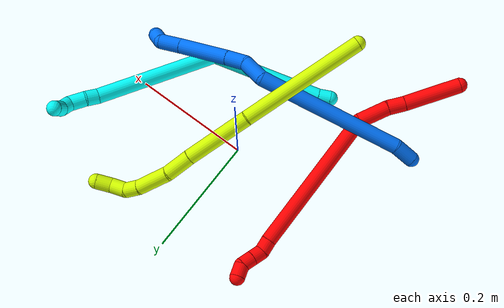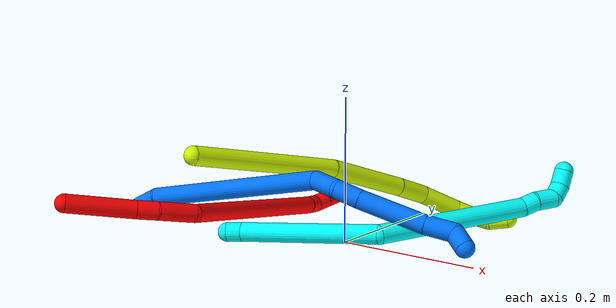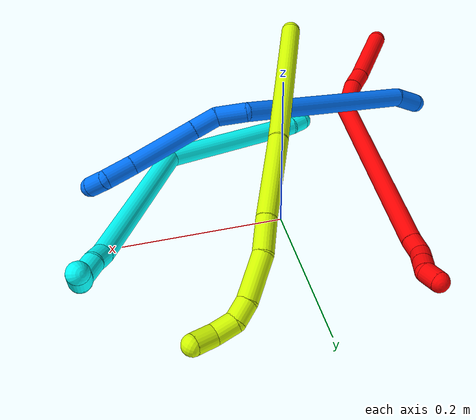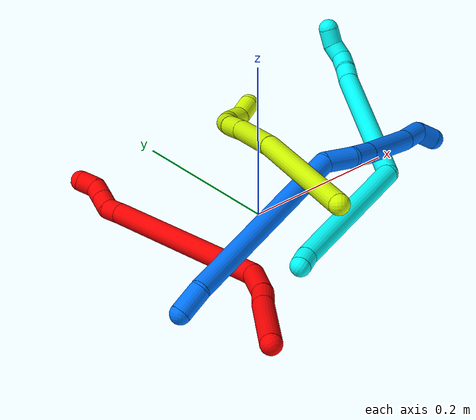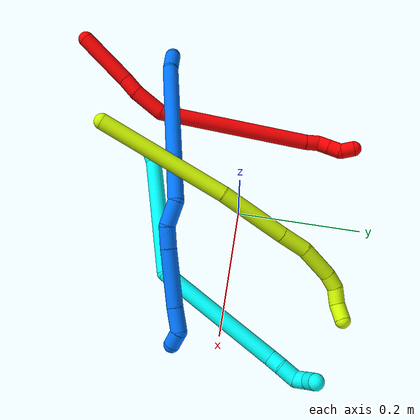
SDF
<sdf version="1.7">
 <world name="default">
  <model name="2">
   <static>0</static>
   <link name="2">
    <collision name="collision-cylinder-e_1_1_4">
     <pose>-0.012761 0.027222 -0.035474 -2.48706 -0.27799 0.781788</pose>
     <geometry><cylinder><radius>0.0125</radius><length>0.093001</length></cylinder></geometry>
     <surface>
      <friction><ode><mu>1.16</mu><mu2>1.16</mu2><slip1>0</slip1><slip2>0</slip2></ode></friction>
      <contact><ode><kp>1e+06</kp><kd>1</kd><max_vel>0</max_vel><min_depth>0.001</min_depth></ode></contact>
     </surface>
    </collision>
    <visual name="visual-cylinder-e_1_1_4">
     <pose>-0.012761 0.027222 -0.035474 -2.48706 -0.27799 0.781788</pose>
     <geometry><cylinder><radius>0.0125</radius><length>0.093001</length></cylinder></geometry>
     <material><ambient>1 0 0 1</ambient></material>
    </visual>
    <collision name="collision-cylinder-e_2_4_5">
     <pose>-0.030514 0.062322 -0.081615 -2.50552 -0.36005 1.01001</pose>
     <geometry><cylinder><radius>0.0125</radius><length>0.028337</length></cylinder></geometry>
     <surface>
      <friction><ode><mu>1.16</mu><mu2>1.16</mu2><slip1>0</slip1><slip2>0</slip2></ode></friction>
      <contact><ode><kp>1e+06</kp><kd>1</kd><max_vel>0</max_vel><min_depth>0.001</min_depth></ode></contact>
     </surface>
    </collision>
    <visual name="visual-cylinder-e_2_4_5">
     <pose>-0.030514 0.062322 -0.081615 -2.50552 -0.36005 1.01001</pose>
     <geometry><cylinder><radius>0.0125</radius><length>0.028337</length></cylinder></geometry>
     <material><ambient>1 0 0 1</ambient></material>
    </visual>
    <collision name="collision-cylinder-e_3_5_6">
     <pose>-0.039711 0.084904 -0.112678 -2.51692 -0.165704 0.503428</pose>
     <geometry><cylinder><radius>0.0125</radius><length>0.050988</length></cylinder></geometry>
     <surface>
      <friction><ode><mu>1.16</mu><mu2>1.16</mu2><slip1>0</slip1><slip2>0</slip2></ode></friction>
      <contact><ode><kp>1e+06</kp><kd>1</kd><max_vel>0</max_vel><min_depth>0.001</min_depth></ode></contact>
     </surface>
    </collision>
    <visual name="visual-cylinder-e_3_5_6">
     <pose>-0.039711 0.084904 -0.112678 -2.51692 -0.165704 0.503428</pose>
     <geometry><cylinder><radius>0.0125</radius><length>0.050988</length></cylinder></geometry>
     <material><ambient>1 0 0 1</ambient></material>
    </visual>
    <collision name="collision-cylinder-e_4_6_7">
     <pose>-0.006024 0.153257 -0.236125 -2.66161 0.315276 -1.15215</pose>
     <geometry><cylinder><radius>0.0125</radius><length>0.244403</length></cylinder></geometry>
     <surface>
      <friction><ode><mu>1.16</mu><mu2>1.16</mu2><slip1>0</slip1><slip2>0</slip2></ode></friction>
      <contact><ode><kp>1e+06</kp><kd>1</kd><max_vel>0</max_vel><min_depth>0.001</min_depth></ode></contact>
     </surface>
    </collision>
    <visual name="visual-cylinder-e_4_6_7">
     <pose>-0.006024 0.153257 -0.236125 -2.66161 0.315276 -1.15215</pose>
     <geometry><cylinder><radius>0.0125</radius><length>0.244403</length></cylinder></geometry>
     <material><ambient>1 0 0 1</ambient></material>
    </visual>
    <collision name="collision-cylinder-e_5_7_8">
     <pose>0.036133 0.21085 -0.348148 -2.72737 0.410359 -1.56115</pose>
     <geometry><cylinder><radius>0.0125</radius><length>0.021379</length></cylinder></geometry>
     <surface>
      <friction><ode><mu>1.16</mu><mu2>1.16</mu2><slip1>0</slip1><slip2>0</slip2></ode></friction>
      <contact><ode><kp>1e+06</kp><kd>1</kd><max_vel>0</max_vel><min_depth>0.001</min_depth></ode></contact>
     </surface>
    </collision>
    <visual name="visual-cylinder-e_5_7_8">
     <pose>0.036133 0.21085 -0.348148 -2.72737 0.410359 -1.56115</pose>
     <geometry><cylinder><radius>0.0125</radius><length>0.021379</length></cylinder></geometry>
     <material><ambient>1 0 0 1</ambient></material>
    </visual>
    <collision name="collision-cylinder-e_6_8_9">
     <pose>0.03995 0.216817 -0.366912 -2.93795 -0.044724 0.431002</pose>
     <geometry><cylinder><radius>0.0125</radius><length>0.020014</length></cylinder></geometry>
     <surface>
      <friction><ode><mu>1.16</mu><mu2>1.16</mu2><slip1>0</slip1><slip2>0</slip2></ode></friction>
      <contact><ode><kp>1e+06</kp><kd>1</kd><max_vel>0</max_vel><min_depth>0.001</min_depth></ode></contact>
     </surface>
    </collision>
    <visual name="visual-cylinder-e_6_8_9">
     <pose>0.03995 0.216817 -0.366912 -2.93795 -0.044724 0.431002</pose>
     <geometry><cylinder><radius>0.0125</radius><length>0.020014</length></cylinder></geometry>
     <material><ambient>1 0 0 1</ambient></material>
    </visual>
    <collision name="collision-cylinder-e_7_9_10">
     <pose>0.039104 0.220993 -0.386509 -2.92538 -0.039623 0.361153</pose>
     <geometry><cylinder><radius>0.0125</radius><length>0.020097</length></cylinder></geometry>
     <surface>
      <friction><ode><mu>1.16</mu><mu2>1.16</mu2><slip1>0</slip1><slip2>0</slip2></ode></friction>
      <contact><ode><kp>1e+06</kp><kd>1</kd><max_vel>0</max_vel><min_depth>0.001</min_depth></ode></contact>
     </surface>
    </collision>
    <visual name="visual-cylinder-e_7_9_10">
     <pose>0.039104 0.220993 -0.386509 -2.92538 -0.039623 0.361153</pose>
     <geometry><cylinder><radius>0.0125</radius><length>0.020097</length></cylinder></geometry>
     <material><ambient>1 0 0 1</ambient></material>
    </visual>
    <collision name="collision-cylinder-e_8_10_2">
     <pose>0.044457 0.224028 -0.405522 -3.04619 0.556384 -2.81036</pose>
     <geometry><cylinder><radius>0.0125</radius><length>0.02178</length></cylinder></geometry>
     <surface>
      <friction><ode><mu>1.16</mu><mu2>1.16</mu2><slip1>0</slip1><slip2>0</slip2></ode></friction>
      <contact><ode><kp>1e+06</kp><kd>1</kd><max_vel>0</max_vel><min_depth>0.001</min_depth></ode></contact>
     </surface>
    </collision>
    <visual name="visual-cylinder-e_8_10_2">
     <pose>0.044457 0.224028 -0.405522 -3.04619 0.556384 -2.81036</pose>
     <geometry><cylinder><radius>0.0125</radius><length>0.02178</length></cylinder></geometry>
     <material><ambient>1 0 0 1</ambient></material>
    </visual>
    <collision name="collision-sphere-2">
     <pose>0.050209 0.224909 -0.414727 0 -0 0</pose>
     <geometry><sphere><radius>0.0125</radius></sphere></geometry>
     <surface>
      <friction><ode><mu>1.16</mu><mu2>1.16</mu2><slip1>0</slip1><slip2>0</slip2></ode></friction>
      <contact><ode><kp>1e+06</kp><kd>1</kd><max_vel>0</max_vel><min_depth>0.001</min_depth></ode></contact>
     </surface>
    </collision>
    <visual name="visual-sphere-2">
     <pose>0.050209 0.224909 -0.414727 0 -0 0</pose>
     <geometry><sphere><radius>0.0125</radius></sphere></geometry>
     <material><ambient>1 0 0 1</ambient></material>
    </visual>
    <collision name="collision-sphere-10">
     <pose>0.038706 0.223147 -0.396316 0 -0 0</pose>
     <geometry><sphere><radius>0.0125</radius></sphere></geometry>
     <surface>
      <friction><ode><mu>1.16</mu><mu2>1.16</mu2><slip1>0</slip1><slip2>0</slip2></ode></friction>
      <contact><ode><kp>1e+06</kp><kd>1</kd><max_vel>0</max_vel><min_depth>0.001</min_depth></ode></contact>
     </surface>
    </collision>
    <visual name="visual-sphere-10">
     <pose>0.038706 0.223147 -0.396316 0 -0 0</pose>
     <geometry><sphere><radius>0.0125</radius></sphere></geometry>
     <material><ambient>1 0 0 1</ambient></material>
    </visual>
    <collision name="collision-sphere-9">
     <pose>0.039502 0.218839 -0.376702 0 -0 0</pose>
     <geometry><sphere><radius>0.0125</radius></sphere></geometry>
     <surface>
      <friction><ode><mu>1.16</mu><mu2>1.16</mu2><slip1>0</slip1><slip2>0</slip2></ode></friction>
      <contact><ode><kp>1e+06</kp><kd>1</kd><max_vel>0</max_vel><min_depth>0.001</min_depth></ode></contact>
     </surface>
    </collision>
    <visual name="visual-sphere-9">
     <pose>0.039502 0.218839 -0.376702 0 -0 0</pose>
     <geometry><sphere><radius>0.0125</radius></sphere></geometry>
     <material><ambient>1 0 0 1</ambient></material>
    </visual>
    <collision name="collision-sphere-4">
     <pose>-0.025522 0.054444 -0.070948 0 -0 0</pose>
     <geometry><sphere><radius>0.0125</radius></sphere></geometry>
     <surface>
      <friction><ode><mu>1.16</mu><mu2>1.16</mu2><slip1>0</slip1><slip2>0</slip2></ode></friction>
      <contact><ode><kp>1e+06</kp><kd>1</kd><max_vel>0</max_vel><min_depth>0.001</min_depth></ode></contact>
     </surface>
    </collision>
    <visual name="visual-sphere-4">
     <pose>-0.025522 0.054444 -0.070948 0 -0 0</pose>
     <geometry><sphere><radius>0.0125</radius></sphere></geometry>
     <material><ambient>1 0 0 1</ambient></material>
    </visual>
    <collision name="collision-sphere-1">
     <geometry><sphere><radius>0.0125</radius></sphere></geometry>
     <surface>
      <friction><ode><mu>1.16</mu><mu2>1.16</mu2><slip1>0</slip1><slip2>0</slip2></ode></friction>
      <contact><ode><kp>1e+06</kp><kd>1</kd><max_vel>0</max_vel><min_depth>0.001</min_depth></ode></contact>
     </surface>
    </collision>
    <visual name="visual-sphere-1">
     <geometry><sphere><radius>0.0125</radius></sphere></geometry>
     <material><ambient>1 0 0 1</ambient></material>
    </visual>
    <collision name="collision-sphere-8">
     <pose>0.040397 0.214795 -0.357121 0 -0 0</pose>
     <geometry><sphere><radius>0.0125</radius></sphere></geometry>
     <surface>
      <friction><ode><mu>1.16</mu><mu2>1.16</mu2><slip1>0</slip1><slip2>0</slip2></ode></friction>
      <contact><ode><kp>1e+06</kp><kd>1</kd><max_vel>0</max_vel><min_depth>0.001</min_depth></ode></contact>
     </surface>
    </collision>
    <visual name="visual-sphere-8">
     <pose>0.040397 0.214795 -0.357121 0 -0 0</pose>
     <geometry><sphere><radius>0.0125</radius></sphere></geometry>
     <material><ambient>1 0 0 1</ambient></material>
    </visual>
    <collision name="collision-sphere-5">
     <pose>-0.035506 0.070199 -0.092282 0 -0 0</pose>
     <geometry><sphere><radius>0.0125</radius></sphere></geometry>
     <surface>
      <friction><ode><mu>1.16</mu><mu2>1.16</mu2><slip1>0</slip1><slip2>0</slip2></ode></friction>
      <contact><ode><kp>1e+06</kp><kd>1</kd><max_vel>0</max_vel><min_depth>0.001</min_depth></ode></contact>
     </surface>
    </collision>
    <visual name="visual-sphere-5">
     <pose>-0.035506 0.070199 -0.092282 0 -0 0</pose>
     <geometry><sphere><radius>0.0125</radius></sphere></geometry>
     <material><ambient>1 0 0 1</ambient></material>
    </visual>
    <collision name="collision-sphere-6">
     <pose>-0.043916 0.09961 -0.133075 0 -0 0</pose>
     <geometry><sphere><radius>0.0125</radius></sphere></geometry>
     <surface>
      <friction><ode><mu>1.16</mu><mu2>1.16</mu2><slip1>0</slip1><slip2>0</slip2></ode></friction>
      <contact><ode><kp>1e+06</kp><kd>1</kd><max_vel>0</max_vel><min_depth>0.001</min_depth></ode></contact>
     </surface>
    </collision>
    <visual name="visual-sphere-6">
     <pose>-0.043916 0.09961 -0.133075 0 -0 0</pose>
     <geometry><sphere><radius>0.0125</radius></sphere></geometry>
     <material><ambient>1 0 0 1</ambient></material>
    </visual>
    <collision name="collision-sphere-7">
     <pose>0.031868 0.206905 -0.339175 0 -0 0</pose>
     <geometry><sphere><radius>0.0125</radius></sphere></geometry>
     <surface>
      <friction><ode><mu>1.16</mu><mu2>1.16</mu2><slip1>0</slip1><slip2>0</slip2></ode></friction>
      <contact><ode><kp>1e+06</kp><kd>1</kd><max_vel>0</max_vel><min_depth>0.001</min_depth></ode></contact>
     </surface>
    </collision>
    <visual name="visual-sphere-7">
     <pose>0.031868 0.206905 -0.339175 0 -0 0</pose>
     <geometry><sphere><radius>0.0125</radius></sphere></geometry>
     <material><ambient>1 0 0 1</ambient></material>
    </visual>
    <inertial>
     <pose>-0.004445 0.128502 -0.200907 0 -0 0</pose>
     <mass>0.5</mass>
     <inertia>
      <ixx>-0.000469</ixx>
      <ixy>0</ixy>
      <ixz>0</ixz>
      <iyy>-0.001315</iyy>
      <iyz>0</iyz>
      <izz>-0.000982</izz>
     </inertia>
    </inertial>
   </link>
   <pose>-0.235277 -0.2874 0.076403 -1.97616 0.255977 2.84321</pose>
  </model>
  <model name="3">
   <static>0</static>
   <link name="3">
    <collision name="collision-cylinder-e_1_1_4">
     <pose>-0.000626 0.010036 -0.000285 -1.59923 -0.062261 0.064056</pose>
     <geometry><cylinder><radius>0.0125</radius><length>0.020119</length></cylinder></geometry>
     <surface>
      <friction><ode><mu>1.16</mu><mu2>1.16</mu2><slip1>0</slip1><slip2>0</slip2></ode></friction>
      <contact><ode><kp>1e+06</kp><kd>1</kd><max_vel>0</max_vel><min_depth>0.001</min_depth></ode></contact>
     </surface>
    </collision>
    <visual name="visual-cylinder-e_1_1_4">
     <pose>-0.000626 0.010036 -0.000285 -1.59923 -0.062261 0.064056</pose>
     <geometry><cylinder><radius>0.0125</radius><length>0.020119</length></cylinder></geometry>
     <material><ambient>0.003922 1 0.996078 1</ambient></material>
    </visual>
    <collision name="collision-cylinder-e_2_4_5">
     <pose>0.004504 0.111106 -0.017144 -1.75088 0.062124 -0.074445</pose>
     <geometry><cylinder><radius>0.0125</radius><length>0.185419</length></cylinder></geometry>
     <surface>
      <friction><ode><mu>1.16</mu><mu2>1.16</mu2><slip1>0</slip1><slip2>0</slip2></ode></friction>
      <contact><ode><kp>1e+06</kp><kd>1</kd><max_vel>0</max_vel><min_depth>0.001</min_depth></ode></contact>
     </surface>
    </collision>
    <visual name="visual-cylinder-e_2_4_5">
     <pose>0.004504 0.111106 -0.017144 -1.75088 0.062124 -0.074445</pose>
     <geometry><cylinder><radius>0.0125</radius><length>0.185419</length></cylinder></geometry>
     <material><ambient>0.003922 1 0.996078 1</ambient></material>
    </visual>
    <collision name="collision-cylinder-e_3_5_6">
     <pose>-0.020717 0.287971 0.012728 -1.07479 -0.307351 0.184083</pose>
     <geometry><cylinder><radius>0.0125</radius><length>0.204778</length></cylinder></geometry>
     <surface>
      <friction><ode><mu>1.16</mu><mu2>1.16</mu2><slip1>0</slip1><slip2>0</slip2></ode></friction>
      <contact><ode><kp>1e+06</kp><kd>1</kd><max_vel>0</max_vel><min_depth>0.001</min_depth></ode></contact>
     </surface>
    </collision>
    <visual name="visual-cylinder-e_3_5_6">
     <pose>-0.020717 0.287971 0.012728 -1.07479 -0.307351 0.184083</pose>
     <geometry><cylinder><radius>0.0125</radius><length>0.204778</length></cylinder></geometry>
     <material><ambient>0.003922 1 0.996078 1</ambient></material>
    </visual>
    <collision name="collision-cylinder-e_4_6_7">
     <pose>-0.052447 0.382558 0.064664 -1.01077 -0.072798 0.040293</pose>
     <geometry><cylinder><radius>0.0125</radius><length>0.020726</length></cylinder></geometry>
     <surface>
      <friction><ode><mu>1.16</mu><mu2>1.16</mu2><slip1>0</slip1><slip2>0</slip2></ode></friction>
      <contact><ode><kp>1e+06</kp><kd>1</kd><max_vel>0</max_vel><min_depth>0.001</min_depth></ode></contact>
     </surface>
    </collision>
    <visual name="visual-cylinder-e_4_6_7">
     <pose>-0.052447 0.382558 0.064664 -1.01077 -0.072798 0.040293</pose>
     <geometry><cylinder><radius>0.0125</radius><length>0.020726</length></cylinder></geometry>
     <material><ambient>0.003922 1 0.996078 1</ambient></material>
    </visual>
    <collision name="collision-cylinder-e_5_7_8">
     <pose>-0.057039 0.402943 0.07602 -1.10358 -0.286571 0.177157</pose>
     <geometry><cylinder><radius>0.0125</radius><length>0.027157</length></cylinder></geometry>
     <surface>
      <friction><ode><mu>1.16</mu><mu2>1.16</mu2><slip1>0</slip1><slip2>0</slip2></ode></friction>
      <contact><ode><kp>1e+06</kp><kd>1</kd><max_vel>0</max_vel><min_depth>0.001</min_depth></ode></contact>
     </surface>
    </collision>
    <visual name="visual-cylinder-e_5_7_8">
     <pose>-0.057039 0.402943 0.07602 -1.10358 -0.286571 0.177157</pose>
     <geometry><cylinder><radius>0.0125</radius><length>0.027157</length></cylinder></geometry>
     <material><ambient>0.003922 1 0.996078 1</ambient></material>
    </visual>
    <collision name="collision-cylinder-e_6_8_9">
     <pose>-0.059935 0.418901 0.09092 -0.446883 0.09371 -0.021309</pose>
     <geometry><cylinder><radius>0.0125</radius><length>0.020122</length></cylinder></geometry>
     <surface>
      <friction><ode><mu>1.16</mu><mu2>1.16</mu2><slip1>0</slip1><slip2>0</slip2></ode></friction>
      <contact><ode><kp>1e+06</kp><kd>1</kd><max_vel>0</max_vel><min_depth>0.001</min_depth></ode></contact>
     </surface>
    </collision>
    <visual name="visual-cylinder-e_6_8_9">
     <pose>-0.059935 0.418901 0.09092 -0.446883 0.09371 -0.021309</pose>
     <geometry><cylinder><radius>0.0125</radius><length>0.020122</length></cylinder></geometry>
     <material><ambient>0.003922 1 0.996078 1</ambient></material>
    </visual>
    <collision name="collision-cylinder-e_7_9_2">
     <pose>-0.052969 0.426727 0.108257 -0.398549 0.589344 -0.122437</pose>
     <geometry><cylinder><radius>0.0125</radius><length>0.021679</length></cylinder></geometry>
     <surface>
      <friction><ode><mu>1.16</mu><mu2>1.16</mu2><slip1>0</slip1><slip2>0</slip2></ode></friction>
      <contact><ode><kp>1e+06</kp><kd>1</kd><max_vel>0</max_vel><min_depth>0.001</min_depth></ode></contact>
     </surface>
    </collision>
    <visual name="visual-cylinder-e_7_9_2">
     <pose>-0.052969 0.426727 0.108257 -0.398549 0.589344 -0.122437</pose>
     <geometry><cylinder><radius>0.0125</radius><length>0.021679</length></cylinder></geometry>
     <material><ambient>0.003922 1 0.996078 1</ambient></material>
    </visual>
    <collision name="collision-sphere-2">
     <pose>-0.046944 0.430224 0.116562 0 -0 0</pose>
     <geometry><sphere><radius>0.0125</radius></sphere></geometry>
     <surface>
      <friction><ode><mu>1.16</mu><mu2>1.16</mu2><slip1>0</slip1><slip2>0</slip2></ode></friction>
      <contact><ode><kp>1e+06</kp><kd>1</kd><max_vel>0</max_vel><min_depth>0.001</min_depth></ode></contact>
     </surface>
    </collision>
    <visual name="visual-sphere-2">
     <pose>-0.046944 0.430224 0.116562 0 -0 0</pose>
     <geometry><sphere><radius>0.0125</radius></sphere></geometry>
     <material><ambient>0.003922 1 0.996078 1</ambient></material>
    </visual>
    <collision name="collision-sphere-9">
     <pose>-0.058994 0.42323 0.099953 0 -0 0</pose>
     <geometry><sphere><radius>0.0125</radius></sphere></geometry>
     <surface>
      <friction><ode><mu>1.16</mu><mu2>1.16</mu2><slip1>0</slip1><slip2>0</slip2></ode></friction>
      <contact><ode><kp>1e+06</kp><kd>1</kd><max_vel>0</max_vel><min_depth>0.001</min_depth></ode></contact>
     </surface>
    </collision>
    <visual name="visual-sphere-9">
     <pose>-0.058994 0.42323 0.099953 0 -0 0</pose>
     <geometry><sphere><radius>0.0125</radius></sphere></geometry>
     <material><ambient>0.003922 1 0.996078 1</ambient></material>
    </visual>
    <collision name="collision-sphere-4">
     <pose>-0.001252 0.020072 -0.000571 0 -0 0</pose>
     <geometry><sphere><radius>0.0125</radius></sphere></geometry>
     <surface>
      <friction><ode><mu>1.16</mu><mu2>1.16</mu2><slip1>0</slip1><slip2>0</slip2></ode></friction>
      <contact><ode><kp>1e+06</kp><kd>1</kd><max_vel>0</max_vel><min_depth>0.001</min_depth></ode></contact>
     </surface>
    </collision>
    <visual name="visual-sphere-4">
     <pose>-0.001252 0.020072 -0.000571 0 -0 0</pose>
     <geometry><sphere><radius>0.0125</radius></sphere></geometry>
     <material><ambient>0.003922 1 0.996078 1</ambient></material>
    </visual>
    <collision name="collision-sphere-1">
     <geometry><sphere><radius>0.0125</radius></sphere></geometry>
     <surface>
      <friction><ode><mu>1.16</mu><mu2>1.16</mu2><slip1>0</slip1><slip2>0</slip2></ode></friction>
      <contact><ode><kp>1e+06</kp><kd>1</kd><max_vel>0</max_vel><min_depth>0.001</min_depth></ode></contact>
     </surface>
    </collision>
    <visual name="visual-sphere-1">
     <geometry><sphere><radius>0.0125</radius></sphere></geometry>
     <material><ambient>0.003922 1 0.996078 1</ambient></material>
    </visual>
    <collision name="collision-sphere-8">
     <pose>-0.060877 0.414572 0.081887 0 -0 0</pose>
     <geometry><sphere><radius>0.0125</radius></sphere></geometry>
     <surface>
      <friction><ode><mu>1.16</mu><mu2>1.16</mu2><slip1>0</slip1><slip2>0</slip2></ode></friction>
      <contact><ode><kp>1e+06</kp><kd>1</kd><max_vel>0</max_vel><min_depth>0.001</min_depth></ode></contact>
     </surface>
    </collision>
    <visual name="visual-sphere-8">
     <pose>-0.060877 0.414572 0.081887 0 -0 0</pose>
     <geometry><sphere><radius>0.0125</radius></sphere></geometry>
     <material><ambient>0.003922 1 0.996078 1</ambient></material>
    </visual>
    <collision name="collision-sphere-5">
     <pose>0.01026 0.20214 -0.033717 0 -0 0</pose>
     <geometry><sphere><radius>0.0125</radius></sphere></geometry>
     <surface>
      <friction><ode><mu>1.16</mu><mu2>1.16</mu2><slip1>0</slip1><slip2>0</slip2></ode></friction>
      <contact><ode><kp>1e+06</kp><kd>1</kd><max_vel>0</max_vel><min_depth>0.001</min_depth></ode></contact>
     </surface>
    </collision>
    <visual name="visual-sphere-5">
     <pose>0.01026 0.20214 -0.033717 0 -0 0</pose>
     <geometry><sphere><radius>0.0125</radius></sphere></geometry>
     <material><ambient>0.003922 1 0.996078 1</ambient></material>
    </visual>
    <collision name="collision-sphere-6">
     <pose>-0.051693 0.373801 0.059173 0 -0 0</pose>
     <geometry><sphere><radius>0.0125</radius></sphere></geometry>
     <surface>
      <friction><ode><mu>1.16</mu><mu2>1.16</mu2><slip1>0</slip1><slip2>0</slip2></ode></friction>
      <contact><ode><kp>1e+06</kp><kd>1</kd><max_vel>0</max_vel><min_depth>0.001</min_depth></ode></contact>
     </surface>
    </collision>
    <visual name="visual-sphere-6">
     <pose>-0.051693 0.373801 0.059173 0 -0 0</pose>
     <geometry><sphere><radius>0.0125</radius></sphere></geometry>
     <material><ambient>0.003922 1 0.996078 1</ambient></material>
    </visual>
    <collision name="collision-sphere-7">
     <pose>-0.0532 0.391315 0.070154 0 -0 0</pose>
     <geometry><sphere><radius>0.0125</radius></sphere></geometry>
     <surface>
      <friction><ode><mu>1.16</mu><mu2>1.16</mu2><slip1>0</slip1><slip2>0</slip2></ode></friction>
      <contact><ode><kp>1e+06</kp><kd>1</kd><max_vel>0</max_vel><min_depth>0.001</min_depth></ode></contact>
     </surface>
    </collision>
    <visual name="visual-sphere-7">
     <pose>-0.0532 0.391315 0.070154 0 -0 0</pose>
     <geometry><sphere><radius>0.0125</radius></sphere></geometry>
     <material><ambient>0.003922 1 0.996078 1</ambient></material>
    </visual>
    <inertial>
     <pose>-0.01682 0.23265 0.014006 0 -0 0</pose>
     <mass>0.5</mass>
     <inertia>
      <ixx>0.001305</ixx>
      <ixy>0</ixy>
      <ixz>0</ixz>
      <iyy>0.000405</iyy>
      <iyz>0</iyz>
      <izz>-0.000947</izz>
     </inertia>
    </inertial>
   </link>
   <pose>-0.074204 -0.156306 0.036663 0.229746 -1.02287 -1.29982</pose>
  </model>
  <model name="14">
   <static>0</static>
   <link name="14">
    <collision name="collision-cylinder-e_1_1_4">
     <pose>0.008261 -0.004357 -0.014912 2.85732 0.48873 2.09958</pose>
     <geometry><cylinder><radius>0.0125</radius><length>0.03519</length></cylinder></geometry>
     <surface>
      <friction><ode><mu>1.16</mu><mu2>1.16</mu2><slip1>0</slip1><slip2>0</slip2></ode></friction>
      <contact><ode><kp>1e+06</kp><kd>1</kd><max_vel>0</max_vel><min_depth>0.001</min_depth></ode></contact>
     </surface>
    </collision>
    <visual name="visual-cylinder-e_1_1_4">
     <pose>0.008261 -0.004357 -0.014912 2.85732 0.48873 2.09958</pose>
     <geometry><cylinder><radius>0.0125</radius><length>0.03519</length></cylinder></geometry>
     <material><ambient>0 0.462745 1 1</ambient></material>
    </visual>
    <collision name="collision-cylinder-e_2_4_5">
     <pose>0.077698 -0.071481 -0.112704 2.49342 0.531865 1.36263</pose>
     <geometry><cylinder><radius>0.0125</radius><length>0.24126</length></cylinder></geometry>
     <surface>
      <friction><ode><mu>1.16</mu><mu2>1.16</mu2><slip1>0</slip1><slip2>0</slip2></ode></friction>
      <contact><ode><kp>1e+06</kp><kd>1</kd><max_vel>0</max_vel><min_depth>0.001</min_depth></ode></contact>
     </surface>
    </collision>
    <visual name="visual-cylinder-e_2_4_5">
     <pose>0.077698 -0.071481 -0.112704 2.49342 0.531865 1.36263</pose>
     <geometry><cylinder><radius>0.0125</radius><length>0.24126</length></cylinder></geometry>
     <material><ambient>0 0.462745 1 1</ambient></material>
    </visual>
    <collision name="collision-cylinder-e_3_5_6">
     <pose>0.155579 -0.142056 -0.202171 2.27161 1.02199 1.7575</pose>
     <geometry><cylinder><radius>0.0125</radius><length>0.039159</length></cylinder></geometry>
     <surface>
      <friction><ode><mu>1.16</mu><mu2>1.16</mu2><slip1>0</slip1><slip2>0</slip2></ode></friction>
      <contact><ode><kp>1e+06</kp><kd>1</kd><max_vel>0</max_vel><min_depth>0.001</min_depth></ode></contact>
     </surface>
    </collision>
    <visual name="visual-cylinder-e_3_5_6">
     <pose>0.155579 -0.142056 -0.202171 2.27161 1.02199 1.7575</pose>
     <geometry><cylinder><radius>0.0125</radius><length>0.039159</length></cylinder></geometry>
     <material><ambient>0 0.462745 1 1</ambient></material>
    </visual>
    <collision name="collision-cylinder-e_4_6_7">
     <pose>0.182639 -0.162379 -0.213228 1.91379 0.661937 0.9073</pose>
     <geometry><cylinder><radius>0.0125</radius><length>0.033699</length></cylinder></geometry>
     <surface>
      <friction><ode><mu>1.16</mu><mu2>1.16</mu2><slip1>0</slip1><slip2>0</slip2></ode></friction>
      <contact><ode><kp>1e+06</kp><kd>1</kd><max_vel>0</max_vel><min_depth>0.001</min_depth></ode></contact>
     </surface>
    </collision>
    <visual name="visual-cylinder-e_4_6_7">
     <pose>0.182639 -0.162379 -0.213228 1.91379 0.661937 0.9073</pose>
     <geometry><cylinder><radius>0.0125</radius><length>0.033699</length></cylinder></geometry>
     <material><ambient>0 0.462745 1 1</ambient></material>
    </visual>
    <collision name="collision-cylinder-e_5_7_8">
     <pose>0.21849 -0.208491 -0.230809 1.94291 0.615356 0.870749</pose>
     <geometry><cylinder><radius>0.0125</radius><length>0.088327</length></cylinder></geometry>
     <surface>
      <friction><ode><mu>1.16</mu><mu2>1.16</mu2><slip1>0</slip1><slip2>0</slip2></ode></friction>
      <contact><ode><kp>1e+06</kp><kd>1</kd><max_vel>0</max_vel><min_depth>0.001</min_depth></ode></contact>
     </surface>
    </collision>
    <visual name="visual-cylinder-e_5_7_8">
     <pose>0.21849 -0.208491 -0.230809 1.94291 0.615356 0.870749</pose>
     <geometry><cylinder><radius>0.0125</radius><length>0.088327</length></cylinder></geometry>
     <material><ambient>0 0.462745 1 1</ambient></material>
    </visual>
    <collision name="collision-cylinder-e_6_8_9">
     <pose>0.253595 -0.256283 -0.251039 2.03551 0.544231 0.849081</pose>
     <geometry><cylinder><radius>0.0125</radius><length>0.037129</length></cylinder></geometry>
     <surface>
      <friction><ode><mu>1.16</mu><mu2>1.16</mu2><slip1>0</slip1><slip2>0</slip2></ode></friction>
      <contact><ode><kp>1e+06</kp><kd>1</kd><max_vel>0</max_vel><min_depth>0.001</min_depth></ode></contact>
     </surface>
    </collision>
    <visual name="visual-cylinder-e_6_8_9">
     <pose>0.253595 -0.256283 -0.251039 2.03551 0.544231 0.849081</pose>
     <geometry><cylinder><radius>0.0125</radius><length>0.037129</length></cylinder></geometry>
     <material><ambient>0 0.462745 1 1</ambient></material>
    </visual>
    <collision name="collision-cylinder-e_7_9_2">
     <pose>0.274626 -0.275498 -0.256245 1.20657 1.1313 0.824639</pose>
     <geometry><cylinder><radius>0.0125</radius><length>0.025236</length></cylinder></geometry>
     <surface>
      <friction><ode><mu>1.16</mu><mu2>1.16</mu2><slip1>0</slip1><slip2>0</slip2></ode></friction>
      <contact><ode><kp>1e+06</kp><kd>1</kd><max_vel>0</max_vel><min_depth>0.001</min_depth></ode></contact>
     </surface>
    </collision>
    <visual name="visual-cylinder-e_7_9_2">
     <pose>0.274626 -0.275498 -0.256245 1.20657 1.1313 0.824639</pose>
     <geometry><cylinder><radius>0.0125</radius><length>0.025236</length></cylinder></geometry>
     <material><ambient>0 0.462745 1 1</ambient></material>
    </visual>
    <collision name="collision-sphere-2">
     <pose>0.286045 -0.280514 -0.254332 0 -0 0</pose>
     <geometry><sphere><radius>0.0125</radius></sphere></geometry>
     <surface>
      <friction><ode><mu>1.16</mu><mu2>1.16</mu2><slip1>0</slip1><slip2>0</slip2></ode></friction>
      <contact><ode><kp>1e+06</kp><kd>1</kd><max_vel>0</max_vel><min_depth>0.001</min_depth></ode></contact>
     </surface>
    </collision>
    <visual name="visual-sphere-2">
     <pose>0.286045 -0.280514 -0.254332 0 -0 0</pose>
     <geometry><sphere><radius>0.0125</radius></sphere></geometry>
     <material><ambient>0 0.462745 1 1</ambient></material>
    </visual>
    <collision name="collision-sphere-9">
     <pose>0.263207 -0.270481 -0.258157 0 -0 0</pose>
     <geometry><sphere><radius>0.0125</radius></sphere></geometry>
     <surface>
      <friction><ode><mu>1.16</mu><mu2>1.16</mu2><slip1>0</slip1><slip2>0</slip2></ode></friction>
      <contact><ode><kp>1e+06</kp><kd>1</kd><max_vel>0</max_vel><min_depth>0.001</min_depth></ode></contact>
     </surface>
    </collision>
    <visual name="visual-sphere-9">
     <pose>0.263207 -0.270481 -0.258157 0 -0 0</pose>
     <geometry><sphere><radius>0.0125</radius></sphere></geometry>
     <material><ambient>0 0.462745 1 1</ambient></material>
    </visual>
    <collision name="collision-sphere-4">
     <pose>0.016522 -0.008714 -0.029823 0 -0 0</pose>
     <geometry><sphere><radius>0.0125</radius></sphere></geometry>
     <surface>
      <friction><ode><mu>1.16</mu><mu2>1.16</mu2><slip1>0</slip1><slip2>0</slip2></ode></friction>
      <contact><ode><kp>1e+06</kp><kd>1</kd><max_vel>0</max_vel><min_depth>0.001</min_depth></ode></contact>
     </surface>
    </collision>
    <visual name="visual-sphere-4">
     <pose>0.016522 -0.008714 -0.029823 0 -0 0</pose>
     <geometry><sphere><radius>0.0125</radius></sphere></geometry>
     <material><ambient>0 0.462745 1 1</ambient></material>
    </visual>
    <collision name="collision-sphere-1">
     <geometry><sphere><radius>0.0125</radius></sphere></geometry>
     <surface>
      <friction><ode><mu>1.16</mu><mu2>1.16</mu2><slip1>0</slip1><slip2>0</slip2></ode></friction>
      <contact><ode><kp>1e+06</kp><kd>1</kd><max_vel>0</max_vel><min_depth>0.001</min_depth></ode></contact>
     </surface>
    </collision>
    <visual name="visual-sphere-1">
     <geometry><sphere><radius>0.0125</radius></sphere></geometry>
     <material><ambient>0 0.462745 1 1</ambient></material>
    </visual>
    <collision name="collision-sphere-8">
     <pose>0.243983 -0.242085 -0.243922 0 -0 0</pose>
     <geometry><sphere><radius>0.0125</radius></sphere></geometry>
     <surface>
      <friction><ode><mu>1.16</mu><mu2>1.16</mu2><slip1>0</slip1><slip2>0</slip2></ode></friction>
      <contact><ode><kp>1e+06</kp><kd>1</kd><max_vel>0</max_vel><min_depth>0.001</min_depth></ode></contact>
     </surface>
    </collision>
    <visual name="visual-sphere-8">
     <pose>0.243983 -0.242085 -0.243922 0 -0 0</pose>
     <geometry><sphere><radius>0.0125</radius></sphere></geometry>
     <material><ambient>0 0.462745 1 1</ambient></material>
    </visual>
    <collision name="collision-sphere-5">
     <pose>0.138875 -0.134249 -0.195585 0 -0 0</pose>
     <geometry><sphere><radius>0.0125</radius></sphere></geometry>
     <surface>
      <friction><ode><mu>1.16</mu><mu2>1.16</mu2><slip1>0</slip1><slip2>0</slip2></ode></friction>
      <contact><ode><kp>1e+06</kp><kd>1</kd><max_vel>0</max_vel><min_depth>0.001</min_depth></ode></contact>
     </surface>
    </collision>
    <visual name="visual-sphere-5">
     <pose>0.138875 -0.134249 -0.195585 0 -0 0</pose>
     <geometry><sphere><radius>0.0125</radius></sphere></geometry>
     <material><ambient>0 0.462745 1 1</ambient></material>
    </visual>
    <collision name="collision-sphere-6">
     <pose>0.172283 -0.149862 -0.208758 0 -0 0</pose>
     <geometry><sphere><radius>0.0125</radius></sphere></geometry>
     <surface>
      <friction><ode><mu>1.16</mu><mu2>1.16</mu2><slip1>0</slip1><slip2>0</slip2></ode></friction>
      <contact><ode><kp>1e+06</kp><kd>1</kd><max_vel>0</max_vel><min_depth>0.001</min_depth></ode></contact>
     </surface>
    </collision>
    <visual name="visual-sphere-6">
     <pose>0.172283 -0.149862 -0.208758 0 -0 0</pose>
     <geometry><sphere><radius>0.0125</radius></sphere></geometry>
     <material><ambient>0 0.462745 1 1</ambient></material>
    </visual>
    <collision name="collision-sphere-7">
     <pose>0.192996 -0.174896 -0.217697 0 -0 0</pose>
     <geometry><sphere><radius>0.0125</radius></sphere></geometry>
     <surface>
      <friction><ode><mu>1.16</mu><mu2>1.16</mu2><slip1>0</slip1><slip2>0</slip2></ode></friction>
      <contact><ode><kp>1e+06</kp><kd>1</kd><max_vel>0</max_vel><min_depth>0.001</min_depth></ode></contact>
     </surface>
    </collision>
    <visual name="visual-sphere-7">
     <pose>0.192996 -0.174896 -0.217697 0 -0 0</pose>
     <geometry><sphere><radius>0.0125</radius></sphere></geometry>
     <material><ambient>0 0.462745 1 1</ambient></material>
    </visual>
    <inertial>
     <pose>0.133856 -0.126634 -0.157985 0 -0 0</pose>
     <mass>0.5</mass>
     <inertia><ixx>0.001315</ixx><ixy>0</ixy><ixz>0</ixz><iyy>0.001206</iyy><iyz>0</iyz><izz>4e-06</izz></inertia>
    </inertial>
   </link>
   <pose>-0.242012 -0.147286 0.044301 2.60269 0.246072 -0.730118</pose>
  </model>
  <model name="15">
   <static>0</static>
   <link name="15">
    <collision name="collision-cylinder-e_1_1_4">
     <pose>0.087167 0.031972 0.048675 -0.581167 0.981801 -0.317028</pose>
     <geometry><cylinder><radius>0.0125</radius><length>0.209662</length></cylinder></geometry>
     <surface>
      <friction><ode><mu>1.16</mu><mu2>1.16</mu2><slip1>0</slip1><slip2>0</slip2></ode></friction>
      <contact><ode><kp>1e+06</kp><kd>1</kd><max_vel>0</max_vel><min_depth>0.001</min_depth></ode></contact>
     </surface>
    </collision>
    <visual name="visual-cylinder-e_1_1_4">
     <pose>0.087167 0.031972 0.048675 -0.581167 0.981801 -0.317028</pose>
     <geometry><cylinder><radius>0.0125</radius><length>0.209662</length></cylinder></geometry>
     <material><ambient>0.835294 1 0 1</ambient></material>
    </visual>
    <collision name="collision-cylinder-e_2_4_5">
     <pose>0.21779 0.08835 0.121338 -0.79406 0.903727 -0.401533</pose>
     <geometry><cylinder><radius>0.0125</radius><length>0.110627</length></cylinder></geometry>
     <surface>
      <friction><ode><mu>1.16</mu><mu2>1.16</mu2><slip1>0</slip1><slip2>0</slip2></ode></friction>
      <contact><ode><kp>1e+06</kp><kd>1</kd><max_vel>0</max_vel><min_depth>0.001</min_depth></ode></contact>
     </surface>
    </collision>
    <visual name="visual-cylinder-e_2_4_5">
     <pose>0.21779 0.08835 0.121338 -0.79406 0.903727 -0.401533</pose>
     <geometry><cylinder><radius>0.0125</radius><length>0.110627</length></cylinder></geometry>
     <material><ambient>0.835294 1 0 1</ambient></material>
    </visual>
    <collision name="collision-cylinder-e_3_5_6">
     <pose>0.278189 0.123173 0.155884 -0.778601 0.851743 -0.367986</pose>
     <geometry><cylinder><radius>0.0125</radius><length>0.045032</length></cylinder></geometry>
     <surface>
      <friction><ode><mu>1.16</mu><mu2>1.16</mu2><slip1>0</slip1><slip2>0</slip2></ode></friction>
      <contact><ode><kp>1e+06</kp><kd>1</kd><max_vel>0</max_vel><min_depth>0.001</min_depth></ode></contact>
     </surface>
    </collision>
    <visual name="visual-cylinder-e_3_5_6">
     <pose>0.278189 0.123173 0.155884 -0.778601 0.851743 -0.367986</pose>
     <geometry><cylinder><radius>0.0125</radius><length>0.045032</length></cylinder></geometry>
     <material><ambient>0.835294 1 0 1</ambient></material>
    </visual>
    <collision name="collision-cylinder-e_4_6_7">
     <pose>0.31681 0.149845 0.173685 -1.15166 0.883431 -0.595739</pose>
     <geometry><cylinder><radius>0.0125</radius><length>0.056098</length></cylinder></geometry>
     <surface>
      <friction><ode><mu>1.16</mu><mu2>1.16</mu2><slip1>0</slip1><slip2>0</slip2></ode></friction>
      <contact><ode><kp>1e+06</kp><kd>1</kd><max_vel>0</max_vel><min_depth>0.001</min_depth></ode></contact>
     </surface>
    </collision>
    <visual name="visual-cylinder-e_4_6_7">
     <pose>0.31681 0.149845 0.173685 -1.15166 0.883431 -0.595739</pose>
     <geometry><cylinder><radius>0.0125</radius><length>0.056098</length></cylinder></geometry>
     <material><ambient>0.835294 1 0 1</ambient></material>
    </visual>
    <collision name="collision-cylinder-e_5_7_8">
     <pose>0.348676 0.173284 0.181645 -1.47135 0.954295 -0.875406</pose>
     <geometry><cylinder><radius>0.0125</radius><length>0.02497</length></cylinder></geometry>
     <surface>
      <friction><ode><mu>1.16</mu><mu2>1.16</mu2><slip1>0</slip1><slip2>0</slip2></ode></friction>
      <contact><ode><kp>1e+06</kp><kd>1</kd><max_vel>0</max_vel><min_depth>0.001</min_depth></ode></contact>
     </surface>
    </collision>
    <visual name="visual-cylinder-e_5_7_8">
     <pose>0.348676 0.173284 0.181645 -1.47135 0.954295 -0.875406</pose>
     <geometry><cylinder><radius>0.0125</radius><length>0.02497</length></cylinder></geometry>
     <material><ambient>0.835294 1 0 1</ambient></material>
    </visual>
    <collision name="collision-cylinder-e_6_8_9">
     <pose>0.36949 0.186529 0.176894 -2.30467 0.915801 -1.67333</pose>
     <geometry><cylinder><radius>0.0125</radius><length>0.026803</length></cylinder></geometry>
     <surface>
      <friction><ode><mu>1.16</mu><mu2>1.16</mu2><slip1>0</slip1><slip2>0</slip2></ode></friction>
      <contact><ode><kp>1e+06</kp><kd>1</kd><max_vel>0</max_vel><min_depth>0.001</min_depth></ode></contact>
     </surface>
    </collision>
    <visual name="visual-cylinder-e_6_8_9">
     <pose>0.36949 0.186529 0.176894 -2.30467 0.915801 -1.67333</pose>
     <geometry><cylinder><radius>0.0125</radius><length>0.026803</length></cylinder></geometry>
     <material><ambient>0.835294 1 0 1</ambient></material>
    </visual>
    <collision name="collision-cylinder-e_7_9_2">
     <pose>0.392687 0.19385 0.166941 -2.86802 1.21588 -2.75102</pose>
     <geometry><cylinder><radius>0.0125</radius><length>0.026808</length></cylinder></geometry>
     <surface>
      <friction><ode><mu>1.16</mu><mu2>1.16</mu2><slip1>0</slip1><slip2>0</slip2></ode></friction>
      <contact><ode><kp>1e+06</kp><kd>1</kd><max_vel>0</max_vel><min_depth>0.001</min_depth></ode></contact>
     </surface>
    </collision>
    <visual name="visual-cylinder-e_7_9_2">
     <pose>0.392687 0.19385 0.166941 -2.86802 1.21588 -2.75102</pose>
     <geometry><cylinder><radius>0.0125</radius><length>0.026808</length></cylinder></geometry>
     <material><ambient>0.835294 1 0 1</ambient></material>
    </visual>
    <collision name="collision-sphere-2">
     <pose>0.405256 0.195108 0.162457 0 -0 0</pose>
     <geometry><sphere><radius>0.0125</radius></sphere></geometry>
     <surface>
      <friction><ode><mu>1.16</mu><mu2>1.16</mu2><slip1>0</slip1><slip2>0</slip2></ode></friction>
      <contact><ode><kp>1e+06</kp><kd>1</kd><max_vel>0</max_vel><min_depth>0.001</min_depth></ode></contact>
     </surface>
    </collision>
    <visual name="visual-sphere-2">
     <pose>0.405256 0.195108 0.162457 0 -0 0</pose>
     <geometry><sphere><radius>0.0125</radius></sphere></geometry>
     <material><ambient>0.835294 1 0 1</ambient></material>
    </visual>
    <collision name="collision-sphere-9">
     <pose>0.380118 0.192592 0.171426 0 -0 0</pose>
     <geometry><sphere><radius>0.0125</radius></sphere></geometry>
     <surface>
      <friction><ode><mu>1.16</mu><mu2>1.16</mu2><slip1>0</slip1><slip2>0</slip2></ode></friction>
      <contact><ode><kp>1e+06</kp><kd>1</kd><max_vel>0</max_vel><min_depth>0.001</min_depth></ode></contact>
     </surface>
    </collision>
    <visual name="visual-sphere-9">
     <pose>0.380118 0.192592 0.171426 0 -0 0</pose>
     <geometry><sphere><radius>0.0125</radius></sphere></geometry>
     <material><ambient>0.835294 1 0 1</ambient></material>
    </visual>
    <collision name="collision-sphere-4">
     <pose>0.174334 0.063943 0.097351 0 -0 0</pose>
     <geometry><sphere><radius>0.0125</radius></sphere></geometry>
     <surface>
      <friction><ode><mu>1.16</mu><mu2>1.16</mu2><slip1>0</slip1><slip2>0</slip2></ode></friction>
      <contact><ode><kp>1e+06</kp><kd>1</kd><max_vel>0</max_vel><min_depth>0.001</min_depth></ode></contact>
     </surface>
    </collision>
    <visual name="visual-sphere-4">
     <pose>0.174334 0.063943 0.097351 0 -0 0</pose>
     <geometry><sphere><radius>0.0125</radius></sphere></geometry>
     <material><ambient>0.835294 1 0 1</ambient></material>
    </visual>
    <collision name="collision-sphere-1">
     <geometry><sphere><radius>0.0125</radius></sphere></geometry>
     <surface>
      <friction><ode><mu>1.16</mu><mu2>1.16</mu2><slip1>0</slip1><slip2>0</slip2></ode></friction>
      <contact><ode><kp>1e+06</kp><kd>1</kd><max_vel>0</max_vel><min_depth>0.001</min_depth></ode></contact>
     </surface>
    </collision>
    <visual name="visual-sphere-1">
     <geometry><sphere><radius>0.0125</radius></sphere></geometry>
     <material><ambient>0.835294 1 0 1</ambient></material>
    </visual>
    <collision name="collision-sphere-8">
     <pose>0.358862 0.180467 0.182361 0 -0 0</pose>
     <geometry><sphere><radius>0.0125</radius></sphere></geometry>
     <surface>
      <friction><ode><mu>1.16</mu><mu2>1.16</mu2><slip1>0</slip1><slip2>0</slip2></ode></friction>
      <contact><ode><kp>1e+06</kp><kd>1</kd><max_vel>0</max_vel><min_depth>0.001</min_depth></ode></contact>
     </surface>
    </collision>
    <visual name="visual-sphere-8">
     <pose>0.358862 0.180467 0.182361 0 -0 0</pose>
     <geometry><sphere><radius>0.0125</radius></sphere></geometry>
     <material><ambient>0.835294 1 0 1</ambient></material>
    </visual>
    <collision name="collision-sphere-5">
     <pose>0.261247 0.112757 0.145326 0 -0 0</pose>
     <geometry><sphere><radius>0.0125</radius></sphere></geometry>
     <surface>
      <friction><ode><mu>1.16</mu><mu2>1.16</mu2><slip1>0</slip1><slip2>0</slip2></ode></friction>
      <contact><ode><kp>1e+06</kp><kd>1</kd><max_vel>0</max_vel><min_depth>0.001</min_depth></ode></contact>
     </surface>
    </collision>
    <visual name="visual-sphere-5">
     <pose>0.261247 0.112757 0.145326 0 -0 0</pose>
     <geometry><sphere><radius>0.0125</radius></sphere></geometry>
     <material><ambient>0.835294 1 0 1</ambient></material>
    </visual>
    <collision name="collision-sphere-6">
     <pose>0.29513 0.133588 0.166442 0 -0 0</pose>
     <geometry><sphere><radius>0.0125</radius></sphere></geometry>
     <surface>
      <friction><ode><mu>1.16</mu><mu2>1.16</mu2><slip1>0</slip1><slip2>0</slip2></ode></friction>
      <contact><ode><kp>1e+06</kp><kd>1</kd><max_vel>0</max_vel><min_depth>0.001</min_depth></ode></contact>
     </surface>
    </collision>
    <visual name="visual-sphere-6">
     <pose>0.29513 0.133588 0.166442 0 -0 0</pose>
     <geometry><sphere><radius>0.0125</radius></sphere></geometry>
     <material><ambient>0.835294 1 0 1</ambient></material>
    </visual>
    <collision name="collision-sphere-7">
     <pose>0.338489 0.166101 0.180928 0 -0 0</pose>
     <geometry><sphere><radius>0.0125</radius></sphere></geometry>
     <surface>
      <friction><ode><mu>1.16</mu><mu2>1.16</mu2><slip1>0</slip1><slip2>0</slip2></ode></friction>
      <contact><ode><kp>1e+06</kp><kd>1</kd><max_vel>0</max_vel><min_depth>0.001</min_depth></ode></contact>
     </surface>
    </collision>
    <visual name="visual-sphere-7">
     <pose>0.338489 0.166101 0.180928 0 -0 0</pose>
     <geometry><sphere><radius>0.0125</radius></sphere></geometry>
     <material><ambient>0.835294 1 0 1</ambient></material>
    </visual>
    <inertial>
     <pose>0.203612 0.089906 0.108288 0 -0 0</pose>
     <mass>0.5</mass>
     <inertia>
      <ixx>0.000349</ixx>
      <ixy>0</ixy>
      <ixz>0</ixz>
      <iyy>0.000696</iyy>
      <iyz>0</iyz>
      <izz>-0.001057</izz>
     </inertia>
    </inertial>
   </link>
   <pose>-0.074102 -0.2166 0.146975 -1.72526 -0.20773 0.779391</pose>
  </model>
 </world>
</sdf>
